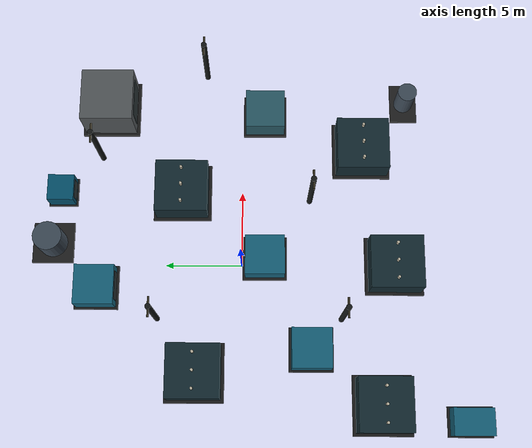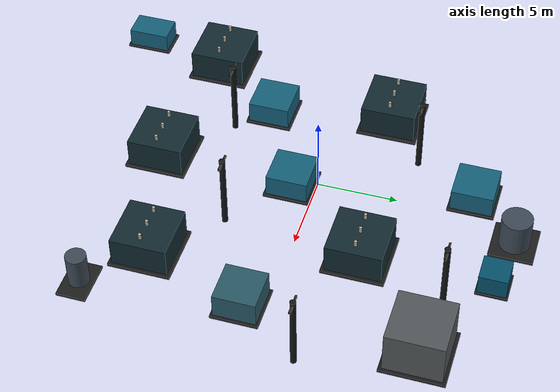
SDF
<sdf version="1.9">
 <world name="substation_extreme">
  <model name="entry_switchgear">
   <static>true</static>
   <pose>-10 -14.5 0 0 0 0</pose>
   <link name="link">
    <collision name="collision">
     <pose>0 0 0.7 0 0 0</pose>
     <geometry><box><size>1.84 2.76 1.4</size></box></geometry>
    </collision>
    <visual name="base">
     <pose>0 0 0.08 0 0 0</pose>
     <geometry><box><size>1.92 2.88 0.16</size></box></geometry>
     <material>
      <ambient>0.10 0.10 0.10 1</ambient>
      <diffuse>0.10 0.10 0.10 1</diffuse>
      <specular>0.08 0.08 0.08 1</specular>
     </material>
     <plugin filename="gz-sim-label-system" name="gz::sim::systems::Label"><label>127</label></plugin>
    </visual>
    <visual name="body">
     <pose>0 0 0.7 0 0 0</pose>
     <geometry><box><size>1.72 2.58 1.26</size></box></geometry>
     <material>
      <ambient>0.08 0.38 0.48 1</ambient>
      <diffuse>0.08 0.38 0.48 1</diffuse>
      <specular>0.08 0.08 0.08 1</specular>
     </material>
     <plugin filename="gz-sim-label-system" name="gz::sim::systems::Label"><label>127</label></plugin>
    </visual>
    <visual name="front_panel">
     <pose>0 -1.305 0.7 0 0 0</pose>
     <geometry><box><size>1.24 0.025 0.812</size></box></geometry>
     <material>
      <ambient>0.16 0.20 0.21 1</ambient>
      <diffuse>0.16 0.20 0.21 1</diffuse>
      <specular>0.08 0.08 0.08 1</specular>
     </material>
     <plugin filename="gz-sim-label-system" name="gz::sim::systems::Label"><label>127</label></plugin>
    </visual>
   </link>
  </model>
  <model name="transformer_01">
   <static>true</static>
   <pose>-9 -9 0 0 0 0</pose>
   <link name="link">
    <collision name="collision">
     <pose>0 0 1.05 0 0 0</pose>
     <geometry><box><size>3.68 3.68 2.1</size></box></geometry>
    </collision>
    <visual name="base">
     <pose>0 0 0.08 0 0 0</pose>
     <geometry><box><size>3.84 3.84 0.16</size></box></geometry>
     <material>
      <ambient>0.10 0.10 0.10 1</ambient>
      <diffuse>0.10 0.10 0.10 1</diffuse>
      <specular>0.08 0.08 0.08 1</specular>
     </material>
     <plugin filename="gz-sim-label-system" name="gz::sim::systems::Label"><label>63</label></plugin>
    </visual>
    <visual name="body">
     <pose>0 0 1.05 0 0 0</pose>
     <geometry><box><size>3.44 3.44 1.89</size></box></geometry>
     <material>
      <ambient>0.07 0.16 0.19 1</ambient>
      <diffuse>0.07 0.16 0.19 1</diffuse>
      <specular>0.08 0.08 0.08 1</specular>
     </material>
     <plugin filename="gz-sim-label-system" name="gz::sim::systems::Label"><label>63</label></plugin>
    </visual>
    <visual name="bushing_1">
     <pose>-1.12 0 2.28 0 0 0</pose>
     <geometry><cylinder><radius>0.09</radius><length>0.36</length></cylinder></geometry>
     <material>
      <ambient>0.75 0.72 0.64 1</ambient>
      <diffuse>0.75 0.72 0.64 1</diffuse>
      <specular>0.08 0.08 0.08 1</specular>
     </material>
     <plugin filename="gz-sim-label-system" name="gz::sim::systems::Label"><label>63</label></plugin>
    </visual>
    <visual name="bushing_2">
     <pose>0 0 2.28 0 0 0</pose>
     <geometry><cylinder><radius>0.09</radius><length>0.36</length></cylinder></geometry>
     <material>
      <ambient>0.75 0.72 0.64 1</ambient>
      <diffuse>0.75 0.72 0.64 1</diffuse>
      <specular>0.08 0.08 0.08 1</specular>
     </material>
     <plugin filename="gz-sim-label-system" name="gz::sim::systems::Label"><label>63</label></plugin>
    </visual>
    <visual name="bushing_3">
     <pose>1.12 0 2.28 0 0 0</pose>
     <geometry><cylinder><radius>0.09</radius><length>0.36</length></cylinder></geometry>
     <material>
      <ambient>0.75 0.72 0.64 1</ambient>
      <diffuse>0.75 0.72 0.64 1</diffuse>
      <specular>0.08 0.08 0.08 1</specular>
     </material>
     <plugin filename="gz-sim-label-system" name="gz::sim::systems::Label"><label>63</label></plugin>
    </visual>
   </link>
  </model>
  <model name="transformer_02">
   <static>true</static>
   <pose>0 -10 0 0 0 0</pose>
   <link name="link">
    <collision name="collision">
     <pose>0 0 1.05 0 0 0</pose>
     <geometry><box><size>3.68 3.68 2.1</size></box></geometry>
    </collision>
    <visual name="base">
     <pose>0 0 0.08 0 0 0</pose>
     <geometry><box><size>3.84 3.84 0.16</size></box></geometry>
     <material>
      <ambient>0.10 0.10 0.10 1</ambient>
      <diffuse>0.10 0.10 0.10 1</diffuse>
      <specular>0.08 0.08 0.08 1</specular>
     </material>
     <plugin filename="gz-sim-label-system" name="gz::sim::systems::Label"><label>59</label></plugin>
    </visual>
    <visual name="body">
     <pose>0 0 1.05 0 0 0</pose>
     <geometry><box><size>3.44 3.44 1.89</size></box></geometry>
     <material>
      <ambient>0.07 0.16 0.19 1</ambient>
      <diffuse>0.07 0.16 0.19 1</diffuse>
      <specular>0.08 0.08 0.08 1</specular>
     </material>
     <plugin filename="gz-sim-label-system" name="gz::sim::systems::Label"><label>59</label></plugin>
    </visual>
    <visual name="bushing_1">
     <pose>-1.12 0 2.28 0 0 0</pose>
     <geometry><cylinder><radius>0.09</radius><length>0.36</length></cylinder></geometry>
     <material>
      <ambient>0.75 0.72 0.64 1</ambient>
      <diffuse>0.75 0.72 0.64 1</diffuse>
      <specular>0.08 0.08 0.08 1</specular>
     </material>
     <plugin filename="gz-sim-label-system" name="gz::sim::systems::Label"><label>59</label></plugin>
    </visual>
    <visual name="bushing_2">
     <pose>0 0 2.28 0 0 0</pose>
     <geometry><cylinder><radius>0.09</radius><length>0.36</length></cylinder></geometry>
     <material>
      <ambient>0.75 0.72 0.64 1</ambient>
      <diffuse>0.75 0.72 0.64 1</diffuse>
      <specular>0.08 0.08 0.08 1</specular>
     </material>
     <plugin filename="gz-sim-label-system" name="gz::sim::systems::Label"><label>59</label></plugin>
    </visual>
    <visual name="bushing_3">
     <pose>1.12 0 2.28 0 0 0</pose>
     <geometry><cylinder><radius>0.09</radius><length>0.36</length></cylinder></geometry>
     <material>
      <ambient>0.75 0.72 0.64 1</ambient>
      <diffuse>0.75 0.72 0.64 1</diffuse>
      <specular>0.08 0.08 0.08 1</specular>
     </material>
     <plugin filename="gz-sim-label-system" name="gz::sim::systems::Label"><label>59</label></plugin>
    </visual>
   </link>
  </model>
  <model name="transformer_03">
   <static>true</static>
   <pose>8 -8 0 0 0 0</pose>
   <link name="link">
    <collision name="collision">
     <pose>0 0 1.05 0 0 0</pose>
     <geometry><box><size>3.68 3.68 2.1</size></box></geometry>
    </collision>
    <visual name="base">
     <pose>0 0 0.08 0 0 0</pose>
     <geometry><box><size>3.84 3.84 0.16</size></box></geometry>
     <material>
      <ambient>0.10 0.10 0.10 1</ambient>
      <diffuse>0.10 0.10 0.10 1</diffuse>
      <specular>0.08 0.08 0.08 1</specular>
     </material>
     <plugin filename="gz-sim-label-system" name="gz::sim::systems::Label"><label>72</label></plugin>
    </visual>
    <visual name="body">
     <pose>0 0 1.05 0 0 0</pose>
     <geometry><box><size>3.44 3.44 1.89</size></box></geometry>
     <material>
      <ambient>0.07 0.16 0.19 1</ambient>
      <diffuse>0.07 0.16 0.19 1</diffuse>
      <specular>0.08 0.08 0.08 1</specular>
     </material>
     <plugin filename="gz-sim-label-system" name="gz::sim::systems::Label"><label>72</label></plugin>
    </visual>
    <visual name="bushing_1">
     <pose>-1.12 0 2.28 0 0 0</pose>
     <geometry><cylinder><radius>0.09</radius><length>0.36</length></cylinder></geometry>
     <material>
      <ambient>0.75 0.72 0.64 1</ambient>
      <diffuse>0.75 0.72 0.64 1</diffuse>
      <specular>0.08 0.08 0.08 1</specular>
     </material>
     <plugin filename="gz-sim-label-system" name="gz::sim::systems::Label"><label>72</label></plugin>
    </visual>
    <visual name="bushing_2">
     <pose>0 0 2.28 0 0 0</pose>
     <geometry><cylinder><radius>0.09</radius><length>0.36</length></cylinder></geometry>
     <material>
      <ambient>0.75 0.72 0.64 1</ambient>
      <diffuse>0.75 0.72 0.64 1</diffuse>
      <specular>0.08 0.08 0.08 1</specular>
     </material>
     <plugin filename="gz-sim-label-system" name="gz::sim::systems::Label"><label>72</label></plugin>
    </visual>
    <visual name="bushing_3">
     <pose>1.12 0 2.28 0 0 0</pose>
     <geometry><cylinder><radius>0.09</radius><length>0.36</length></cylinder></geometry>
     <material>
      <ambient>0.75 0.72 0.64 1</ambient>
      <diffuse>0.75 0.72 0.64 1</diffuse>
      <specular>0.08 0.08 0.08 1</specular>
     </material>
     <plugin filename="gz-sim-label-system" name="gz::sim::systems::Label"><label>72</label></plugin>
    </visual>
   </link>
  </model>
  <model name="transformer_04">
   <static>true</static>
   <pose>-7 3 0 0 0 0</pose>
   <link name="link">
    <collision name="collision">
     <pose>0 0 1.05 0 0 0</pose>
     <geometry><box><size>3.68 3.68 2.1</size></box></geometry>
    </collision>
    <visual name="base">
     <pose>0 0 0.08 0 0 0</pose>
     <geometry><box><size>3.84 3.84 0.16</size></box></geometry>
     <material>
      <ambient>0.10 0.10 0.10 1</ambient>
      <diffuse>0.10 0.10 0.10 1</diffuse>
      <specular>0.08 0.08 0.08 1</specular>
     </material>
     <plugin filename="gz-sim-label-system" name="gz::sim::systems::Label"><label>52</label></plugin>
    </visual>
    <visual name="body">
     <pose>0 0 1.05 0 0 0</pose>
     <geometry><box><size>3.44 3.44 1.89</size></box></geometry>
     <material>
      <ambient>0.07 0.16 0.19 1</ambient>
      <diffuse>0.07 0.16 0.19 1</diffuse>
      <specular>0.08 0.08 0.08 1</specular>
     </material>
     <plugin filename="gz-sim-label-system" name="gz::sim::systems::Label"><label>52</label></plugin>
    </visual>
    <visual name="bushing_1">
     <pose>-1.12 0 2.28 0 0 0</pose>
     <geometry><cylinder><radius>0.09</radius><length>0.36</length></cylinder></geometry>
     <material>
      <ambient>0.75 0.72 0.64 1</ambient>
      <diffuse>0.75 0.72 0.64 1</diffuse>
      <specular>0.08 0.08 0.08 1</specular>
     </material>
     <plugin filename="gz-sim-label-system" name="gz::sim::systems::Label"><label>52</label></plugin>
    </visual>
    <visual name="bushing_2">
     <pose>0 0 2.28 0 0 0</pose>
     <geometry><cylinder><radius>0.09</radius><length>0.36</length></cylinder></geometry>
     <material>
      <ambient>0.75 0.72 0.64 1</ambient>
      <diffuse>0.75 0.72 0.64 1</diffuse>
      <specular>0.08 0.08 0.08 1</specular>
     </material>
     <plugin filename="gz-sim-label-system" name="gz::sim::systems::Label"><label>52</label></plugin>
    </visual>
    <visual name="bushing_3">
     <pose>1.12 0 2.28 0 0 0</pose>
     <geometry><cylinder><radius>0.09</radius><length>0.36</length></cylinder></geometry>
     <material>
      <ambient>0.75 0.72 0.64 1</ambient>
      <diffuse>0.75 0.72 0.64 1</diffuse>
      <specular>0.08 0.08 0.08 1</specular>
     </material>
     <plugin filename="gz-sim-label-system" name="gz::sim::systems::Label"><label>52</label></plugin>
    </visual>
   </link>
  </model>
  <model name="transformer_05">
   <static>true</static>
   <pose>5 4 0 0 0 0</pose>
   <link name="link">
    <collision name="collision">
     <pose>0 0 1.05 0 0 0</pose>
     <geometry><box><size>3.68 3.68 2.1</size></box></geometry>
    </collision>
    <visual name="base">
     <pose>0 0 0.08 0 0 0</pose>
     <geometry><box><size>3.84 3.84 0.16</size></box></geometry>
     <material>
      <ambient>0.10 0.10 0.10 1</ambient>
      <diffuse>0.10 0.10 0.10 1</diffuse>
      <specular>0.08 0.08 0.08 1</specular>
     </material>
     <plugin filename="gz-sim-label-system" name="gz::sim::systems::Label"><label>59</label></plugin>
    </visual>
    <visual name="body">
     <pose>0 0 1.05 0 0 0</pose>
     <geometry><box><size>3.44 3.44 1.89</size></box></geometry>
     <material>
      <ambient>0.07 0.16 0.19 1</ambient>
      <diffuse>0.07 0.16 0.19 1</diffuse>
      <specular>0.08 0.08 0.08 1</specular>
     </material>
     <plugin filename="gz-sim-label-system" name="gz::sim::systems::Label"><label>59</label></plugin>
    </visual>
    <visual name="bushing_1">
     <pose>-1.12 0 2.28 0 0 0</pose>
     <geometry><cylinder><radius>0.09</radius><length>0.36</length></cylinder></geometry>
     <material>
      <ambient>0.75 0.72 0.64 1</ambient>
      <diffuse>0.75 0.72 0.64 1</diffuse>
      <specular>0.08 0.08 0.08 1</specular>
     </material>
     <plugin filename="gz-sim-label-system" name="gz::sim::systems::Label"><label>59</label></plugin>
    </visual>
    <visual name="bushing_2">
     <pose>0 0 2.28 0 0 0</pose>
     <geometry><cylinder><radius>0.09</radius><length>0.36</length></cylinder></geometry>
     <material>
      <ambient>0.75 0.72 0.64 1</ambient>
      <diffuse>0.75 0.72 0.64 1</diffuse>
      <specular>0.08 0.08 0.08 1</specular>
     </material>
     <plugin filename="gz-sim-label-system" name="gz::sim::systems::Label"><label>59</label></plugin>
    </visual>
    <visual name="bushing_3">
     <pose>1.12 0 2.28 0 0 0</pose>
     <geometry><cylinder><radius>0.09</radius><length>0.36</length></cylinder></geometry>
     <material>
      <ambient>0.75 0.72 0.64 1</ambient>
      <diffuse>0.75 0.72 0.64 1</diffuse>
      <specular>0.08 0.08 0.08 1</specular>
     </material>
     <plugin filename="gz-sim-label-system" name="gz::sim::systems::Label"><label>59</label></plugin>
    </visual>
   </link>
  </model>
  <model name="control_building">
   <static>true</static>
   <pose>11 9 0 0 0 0</pose>
   <link name="link">
    <collision name="collision">
     <pose>0 0 1.5 0 0 0</pose>
     <geometry><box><size>3.68 3.68 3</size></box></geometry>
    </collision>
    <visual name="base">
     <pose>0 0 0.08 0 0 0</pose>
     <geometry><box><size>3.84 3.84 0.16</size></box></geometry>
     <material>
      <ambient>0.10 0.10 0.10 1</ambient>
      <diffuse>0.10 0.10 0.10 1</diffuse>
      <specular>0.08 0.08 0.08 1</specular>
     </material>
    </visual>
    <visual name="body">
     <pose>0 0 1.5 0 0 0</pose>
     <geometry><box><size>3.44 3.44 2.7</size></box></geometry>
     <material>
      <ambient>0.32 0.34 0.35 1</ambient>
      <diffuse>0.32 0.34 0.35 1</diffuse>
      <specular>0.08 0.08 0.08 1</specular>
     </material>
    </visual>
    <visual name="front_panel">
     <pose>0 -1.74 1.5 0 0 0</pose>
     <geometry><box><size>2.48 0.025 1.74</size></box></geometry>
     <material>
      <ambient>0.16 0.20 0.21 1</ambient>
      <diffuse>0.16 0.20 0.21 1</diffuse>
      <specular>0.08 0.08 0.08 1</specular>
     </material>
    </visual>
   </link>
  </model>
  <model name="switchgear_south">
   <static>true</static>
   <pose>-5.5 -4.5 0 0 0 0</pose>
   <link name="link">
    <collision name="collision">
     <pose>0 0 0.8 0 0 0</pose>
     <geometry><box><size>2.76 2.76 1.6</size></box></geometry>
    </collision>
    <visual name="base">
     <pose>0 0 0.08 0 0 0</pose>
     <geometry><box><size>2.88 2.88 0.16</size></box></geometry>
     <material>
      <ambient>0.10 0.10 0.10 1</ambient>
      <diffuse>0.10 0.10 0.10 1</diffuse>
      <specular>0.08 0.08 0.08 1</specular>
     </material>
     <plugin filename="gz-sim-label-system" name="gz::sim::systems::Label"><label>149</label></plugin>
    </visual>
    <visual name="body">
     <pose>0 0 0.8 0 0 0</pose>
     <geometry><box><size>2.58 2.58 1.44</size></box></geometry>
     <material>
      <ambient>0.08 0.38 0.48 1</ambient>
      <diffuse>0.08 0.38 0.48 1</diffuse>
      <specular>0.08 0.08 0.08 1</specular>
     </material>
     <plugin filename="gz-sim-label-system" name="gz::sim::systems::Label"><label>149</label></plugin>
    </visual>
    <visual name="front_panel">
     <pose>0 -1.305 0.8 0 0 0</pose>
     <geometry><box><size>1.86 0.025 0.928</size></box></geometry>
     <material>
      <ambient>0.16 0.20 0.21 1</ambient>
      <diffuse>0.16 0.20 0.21 1</diffuse>
      <specular>0.08 0.08 0.08 1</specular>
     </material>
     <plugin filename="gz-sim-label-system" name="gz::sim::systems::Label"><label>149</label></plugin>
    </visual>
   </link>
  </model>
  <model name="switchgear_center">
   <static>true</static>
   <pose>0.5 -1.5 0 0 0 0</pose>
   <link name="link">
    <collision name="collision">
     <pose>0 0 0.8 0 0 0</pose>
     <geometry><box><size>2.76 2.76 1.6</size></box></geometry>
    </collision>
    <visual name="base">
     <pose>0 0 0.08 0 0 0</pose>
     <geometry><box><size>2.88 2.88 0.16</size></box></geometry>
     <material>
      <ambient>0.10 0.10 0.10 1</ambient>
      <diffuse>0.10 0.10 0.10 1</diffuse>
      <specular>0.08 0.08 0.08 1</specular>
     </material>
     <plugin filename="gz-sim-label-system" name="gz::sim::systems::Label"><label>106</label></plugin>
    </visual>
    <visual name="body">
     <pose>0 0 0.8 0 0 0</pose>
     <geometry><box><size>2.58 2.58 1.44</size></box></geometry>
     <material>
      <ambient>0.08 0.38 0.48 1</ambient>
      <diffuse>0.08 0.38 0.48 1</diffuse>
      <specular>0.08 0.08 0.08 1</specular>
     </material>
     <plugin filename="gz-sim-label-system" name="gz::sim::systems::Label"><label>106</label></plugin>
    </visual>
    <visual name="front_panel">
     <pose>0 -1.305 0.8 0 0 0</pose>
     <geometry><box><size>1.86 0.025 0.928</size></box></geometry>
     <material>
      <ambient>0.16 0.20 0.21 1</ambient>
      <diffuse>0.16 0.20 0.21 1</diffuse>
      <specular>0.08 0.08 0.08 1</specular>
     </material>
     <plugin filename="gz-sim-label-system" name="gz::sim::systems::Label"><label>106</label></plugin>
    </visual>
   </link>
  </model>
  <model name="switchgear_north">
   <static>true</static>
   <pose>-1.5 9.5 0 0 0 0</pose>
   <link name="link">
    <collision name="collision">
     <pose>0 0 0.8 0 0 0</pose>
     <geometry><box><size>2.76 2.76 1.6</size></box></geometry>
    </collision>
    <visual name="base">
     <pose>0 0 0.08 0 0 0</pose>
     <geometry><box><size>2.88 2.88 0.16</size></box></geometry>
     <material>
      <ambient>0.10 0.10 0.10 1</ambient>
      <diffuse>0.10 0.10 0.10 1</diffuse>
      <specular>0.08 0.08 0.08 1</specular>
     </material>
     <plugin filename="gz-sim-label-system" name="gz::sim::systems::Label"><label>145</label></plugin>
    </visual>
    <visual name="body">
     <pose>0 0 0.8 0 0 0</pose>
     <geometry><box><size>2.58 2.58 1.44</size></box></geometry>
     <material>
      <ambient>0.08 0.38 0.48 1</ambient>
      <diffuse>0.08 0.38 0.48 1</diffuse>
      <specular>0.08 0.08 0.08 1</specular>
     </material>
     <plugin filename="gz-sim-label-system" name="gz::sim::systems::Label"><label>145</label></plugin>
    </visual>
    <visual name="front_panel">
     <pose>0 -1.305 0.8 0 0 0</pose>
     <geometry><box><size>1.86 0.025 0.928</size></box></geometry>
     <material>
      <ambient>0.16 0.20 0.21 1</ambient>
      <diffuse>0.16 0.20 0.21 1</diffuse>
      <specular>0.08 0.08 0.08 1</specular>
     </material>
     <plugin filename="gz-sim-label-system" name="gz::sim::systems::Label"><label>145</label></plugin>
    </visual>
   </link>
  </model>
  <model name="capacitor_01">
   <static>true</static>
   <pose>10.5 -1.5 0 0 0 0</pose>
   <link name="link">
    <collision name="collision">
     <pose>0 0 0.9 0 0 0</pose>
     <geometry><box><size>2.76 2.76 1.8</size></box></geometry>
    </collision>
    <visual name="base">
     <pose>0 0 0.08 0 0 0</pose>
     <geometry><box><size>2.88 2.88 0.16</size></box></geometry>
     <material>
      <ambient>0.10 0.10 0.10 1</ambient>
      <diffuse>0.10 0.10 0.10 1</diffuse>
      <specular>0.08 0.08 0.08 1</specular>
     </material>
     <plugin filename="gz-sim-label-system" name="gz::sim::systems::Label"><label>171</label></plugin>
    </visual>
    <visual name="body">
     <pose>0 0 0.9 0 0 0</pose>
     <geometry><box><size>2.58 2.58 1.62</size></box></geometry>
     <material>
      <ambient>0.16 0.35 0.40 1</ambient>
      <diffuse>0.16 0.35 0.40 1</diffuse>
      <specular>0.08 0.08 0.08 1</specular>
     </material>
     <plugin filename="gz-sim-label-system" name="gz::sim::systems::Label"><label>171</label></plugin>
    </visual>
    <visual name="capacitor_-0.22_-0.25">
     <pose>-0.75 -0.66 0.98 0 0 0</pose>
     <geometry><cylinder><radius>0.1</radius><length>1.17</length></cylinder></geometry>
     <material>
      <ambient>0.72 0.74 0.70 1</ambient>
      <diffuse>0.72 0.74 0.70 1</diffuse>
      <specular>0.08 0.08 0.08 1</specular>
     </material>
     <plugin filename="gz-sim-label-system" name="gz::sim::systems::Label"><label>171</label></plugin>
    </visual>
    <visual name="capacitor_-0.22_0.0">
     <pose>0 -0.66 0.98 0 0 0</pose>
     <geometry><cylinder><radius>0.1</radius><length>1.17</length></cylinder></geometry>
     <material>
      <ambient>0.72 0.74 0.70 1</ambient>
      <diffuse>0.72 0.74 0.70 1</diffuse>
      <specular>0.08 0.08 0.08 1</specular>
     </material>
     <plugin filename="gz-sim-label-system" name="gz::sim::systems::Label"><label>171</label></plugin>
    </visual>
    <visual name="capacitor_-0.22_0.25">
     <pose>0.75 -0.66 0.98 0 0 0</pose>
     <geometry><cylinder><radius>0.1</radius><length>1.17</length></cylinder></geometry>
     <material>
      <ambient>0.72 0.74 0.70 1</ambient>
      <diffuse>0.72 0.74 0.70 1</diffuse>
      <specular>0.08 0.08 0.08 1</specular>
     </material>
     <plugin filename="gz-sim-label-system" name="gz::sim::systems::Label"><label>171</label></plugin>
    </visual>
    <visual name="capacitor_0.22_-0.25">
     <pose>-0.75 0.66 0.98 0 0 0</pose>
     <geometry><cylinder><radius>0.1</radius><length>1.17</length></cylinder></geometry>
     <material>
      <ambient>0.72 0.74 0.70 1</ambient>
      <diffuse>0.72 0.74 0.70 1</diffuse>
      <specular>0.08 0.08 0.08 1</specular>
     </material>
     <plugin filename="gz-sim-label-system" name="gz::sim::systems::Label"><label>171</label></plugin>
    </visual>
    <visual name="capacitor_0.22_0.0">
     <pose>0 0.66 0.98 0 0 0</pose>
     <geometry><cylinder><radius>0.1</radius><length>1.17</length></cylinder></geometry>
     <material>
      <ambient>0.72 0.74 0.70 1</ambient>
      <diffuse>0.72 0.74 0.70 1</diffuse>
      <specular>0.08 0.08 0.08 1</specular>
     </material>
     <plugin filename="gz-sim-label-system" name="gz::sim::systems::Label"><label>171</label></plugin>
    </visual>
    <visual name="capacitor_0.22_0.25">
     <pose>0.75 0.66 0.98 0 0 0</pose>
     <geometry><cylinder><radius>0.1</radius><length>1.17</length></cylinder></geometry>
     <material>
      <ambient>0.72 0.74 0.70 1</ambient>
      <diffuse>0.72 0.74 0.70 1</diffuse>
      <specular>0.08 0.08 0.08 1</specular>
     </material>
     <plugin filename="gz-sim-label-system" name="gz::sim::systems::Label"><label>171</label></plugin>
    </visual>
   </link>
  </model>
  <model name="reactor_01">
   <static>true</static>
   <pose>1.5 12.5 0 0 0 0</pose>
   <link name="link">
    <collision name="collision">
     <pose>0 0 1.15 0 0 0</pose>
     <geometry><cylinder><radius>1.02</radius><length>2.3</length></cylinder></geometry>
    </collision>
    <visual name="reactor">
     <pose>0 0 1.15 0 0 0</pose>
     <geometry><cylinder><radius>0.9384</radius><length>2.116</length></cylinder></geometry>
     <material>
      <ambient>0.24 0.29 0.34 1</ambient>
      <diffuse>0.24 0.29 0.34 1</diffuse>
      <specular>0.08 0.08 0.08 1</specular>
     </material>
     <plugin filename="gz-sim-label-system" name="gz::sim::systems::Label"><label>234</label></plugin>
    </visual>
    <visual name="base">
     <pose>0 0 0.08 0 0 0</pose>
     <geometry><box><size>2.7 2.7 0.16</size></box></geometry>
     <material>
      <ambient>0.12 0.12 0.12 1</ambient>
      <diffuse>0.12 0.12 0.12 1</diffuse>
      <specular>0.08 0.08 0.08 1</specular>
     </material>
     <plugin filename="gz-sim-label-system" name="gz::sim::systems::Label"><label>234</label></plugin>
    </visual>
   </link>
  </model>
  <model name="reactor_02">
   <static>true</static>
   <pose>11.5 -11 0 0 0 0</pose>
   <link name="link">
    <collision name="collision">
     <pose>0 0 1.15 0 0 0</pose>
     <geometry><cylinder><radius>0.68</radius><length>2.3</length></cylinder></geometry>
    </collision>
    <visual name="reactor">
     <pose>0 0 1.15 0 0 0</pose>
     <geometry><cylinder><radius>0.6256</radius><length>2.116</length></cylinder></geometry>
     <material>
      <ambient>0.24 0.29 0.34 1</ambient>
      <diffuse>0.24 0.29 0.34 1</diffuse>
      <specular>0.08 0.08 0.08 1</specular>
     </material>
     <plugin filename="gz-sim-label-system" name="gz::sim::systems::Label"><label>201</label></plugin>
    </visual>
    <visual name="base">
     <pose>0 0 0.08 0 0 0</pose>
     <geometry><box><size>2.7 1.8 0.16</size></box></geometry>
     <material>
      <ambient>0.12 0.12 0.12 1</ambient>
      <diffuse>0.12 0.12 0.12 1</diffuse>
      <specular>0.08 0.08 0.08 1</specular>
     </material>
     <plugin filename="gz-sim-label-system" name="gz::sim::systems::Label"><label>201</label></plugin>
    </visual>
   </link>
  </model>
  <model name="cabinet_north">
   <static>true</static>
   <pose>5 12 0 0 0 0</pose>
   <link name="link">
    <collision name="collision">
     <pose>0 0 0.75 0 0 0</pose>
     <geometry><box><size>1.84 1.84 1.5</size></box></geometry>
    </collision>
    <visual name="base">
     <pose>0 0 0.08 0 0 0</pose>
     <geometry><box><size>1.92 1.92 0.16</size></box></geometry>
     <material>
      <ambient>0.10 0.10 0.10 1</ambient>
      <diffuse>0.10 0.10 0.10 1</diffuse>
      <specular>0.08 0.08 0.08 1</specular>
     </material>
    </visual>
    <visual name="body">
     <pose>0 0 0.75 0 0 0</pose>
     <geometry><box><size>1.72 1.72 1.35</size></box></geometry>
     <material>
      <ambient>0.02 0.32 0.43 1</ambient>
      <diffuse>0.02 0.32 0.43 1</diffuse>
      <specular>0.08 0.08 0.08 1</specular>
     </material>
    </visual>
    <visual name="front_panel">
     <pose>0 -0.87 0.75 0 0 0</pose>
     <geometry><box><size>1.24 0.025 0.87</size></box></geometry>
     <material>
      <ambient>0.16 0.20 0.21 1</ambient>
      <diffuse>0.16 0.20 0.21 1</diffuse>
      <specular>0.08 0.08 0.08 1</specular>
     </material>
    </visual>
   </link>
  </model>
  <model name="pole_a">
   <static>true</static>
   <pose>-3.5 -6.5 0 0 0 0</pose>
   <link name="link">
    <collision name="collision">
     <pose>0 0 2.5 0 0 0</pose>
     <geometry><cylinder><radius>0.22</radius><length>5</length></cylinder></geometry>
    </collision>
    <visual name="pole">
     <pose>0 0 2.5 0 0 0</pose>
     <geometry><cylinder><radius>0.18</radius><length>5</length></cylinder></geometry>
     <material>
      <ambient>0.08 0.09 0.09 1</ambient>
      <diffuse>0.08 0.09 0.09 1</diffuse>
      <specular>0.08 0.08 0.08 1</specular>
     </material>
    </visual>
    <visual name="crossarm">
     <pose>0 0 4.8 0 0 0</pose>
     <geometry><box><size>1.25 0.12 0.12</size></box></geometry>
     <material>
      <ambient>0.18 0.16 0.10 1</ambient>
      <diffuse>0.18 0.16 0.10 1</diffuse>
      <specular>0.08 0.08 0.08 1</specular>
     </material>
    </visual>
   </link>
  </model>
  <model name="pole_b">
   <static>true</static>
   <pose>4.5 -4.5 0 0 0 0</pose>
   <link name="link">
    <collision name="collision">
     <pose>0 0 2.5 0 0 0</pose>
     <geometry><cylinder><radius>0.22</radius><length>5</length></cylinder></geometry>
    </collision>
    <visual name="pole">
     <pose>0 0 2.5 0 0 0</pose>
     <geometry><cylinder><radius>0.18</radius><length>5</length></cylinder></geometry>
     <material>
      <ambient>0.08 0.09 0.09 1</ambient>
      <diffuse>0.08 0.09 0.09 1</diffuse>
      <specular>0.08 0.08 0.08 1</specular>
     </material>
    </visual>
    <visual name="crossarm">
     <pose>0 0 4.8 0 0 0</pose>
     <geometry><box><size>1.25 0.12 0.12</size></box></geometry>
     <material>
      <ambient>0.18 0.16 0.10 1</ambient>
      <diffuse>0.18 0.16 0.10 1</diffuse>
      <specular>0.08 0.08 0.08 1</specular>
     </material>
    </visual>
   </link>
  </model>
  <model name="pole_c">
   <static>true</static>
   <pose>-3.5 5.5 0 0 0 0</pose>
   <link name="link">
    <collision name="collision">
     <pose>0 0 2.5 0 0 0</pose>
     <geometry><cylinder><radius>0.22</radius><length>5</length></cylinder></geometry>
    </collision>
    <visual name="pole">
     <pose>0 0 2.5 0 0 0</pose>
     <geometry><cylinder><radius>0.18</radius><length>5</length></cylinder></geometry>
     <material>
      <ambient>0.08 0.09 0.09 1</ambient>
      <diffuse>0.08 0.09 0.09 1</diffuse>
      <specular>0.08 0.08 0.08 1</specular>
     </material>
    </visual>
    <visual name="crossarm">
     <pose>0 0 4.8 0 0 0</pose>
     <geometry><box><size>1.25 0.12 0.12</size></box></geometry>
     <material>
      <ambient>0.18 0.16 0.10 1</ambient>
      <diffuse>0.18 0.16 0.10 1</diffuse>
      <specular>0.08 0.08 0.08 1</specular>
     </material>
    </visual>
   </link>
  </model>
  <model name="pole_d">
   <static>true</static>
   <pose>7.5 9.5 0 0 0 0</pose>
   <link name="link">
    <collision name="collision">
     <pose>0 0 2.5 0 0 0</pose>
     <geometry><cylinder><radius>0.22</radius><length>5</length></cylinder></geometry>
    </collision>
    <visual name="pole">
     <pose>0 0 2.5 0 0 0</pose>
     <geometry><cylinder><radius>0.18</radius><length>5</length></cylinder></geometry>
     <material>
      <ambient>0.08 0.09 0.09 1</ambient>
      <diffuse>0.08 0.09 0.09 1</diffuse>
      <specular>0.08 0.08 0.08 1</specular>
     </material>
    </visual>
    <visual name="crossarm">
     <pose>0 0 4.8 0 0 0</pose>
     <geometry><box><size>1.25 0.12 0.12</size></box></geometry>
     <material>
      <ambient>0.18 0.16 0.10 1</ambient>
      <diffuse>0.18 0.16 0.10 1</diffuse>
      <specular>0.08 0.08 0.08 1</specular>
     </material>
    </visual>
   </link>
  </model>
  <model name="pole_e">
   <static>true</static>
   <pose>13.5 2.5 0 0 0 0</pose>
   <link name="link">
    <collision name="collision">
     <pose>0 0 2.5 0 0 0</pose>
     <geometry><cylinder><radius>0.22</radius><length>5</length></cylinder></geometry>
    </collision>
    <visual name="pole">
     <pose>0 0 2.5 0 0 0</pose>
     <geometry><cylinder><radius>0.18</radius><length>5</length></cylinder></geometry>
     <material>
      <ambient>0.08 0.09 0.09 1</ambient>
      <diffuse>0.08 0.09 0.09 1</diffuse>
      <specular>0.08 0.08 0.08 1</specular>
     </material>
    </visual>
    <visual name="crossarm">
     <pose>0 0 4.8 0 0 0</pose>
     <geometry><box><size>1.25 0.12 0.12</size></box></geometry>
     <material>
      <ambient>0.18 0.16 0.10 1</ambient>
      <diffuse>0.18 0.16 0.10 1</diffuse>
      <specular>0.08 0.08 0.08 1</specular>
     </material>
    </visual>
   </link>
  </model>
 </world>
</sdf>
